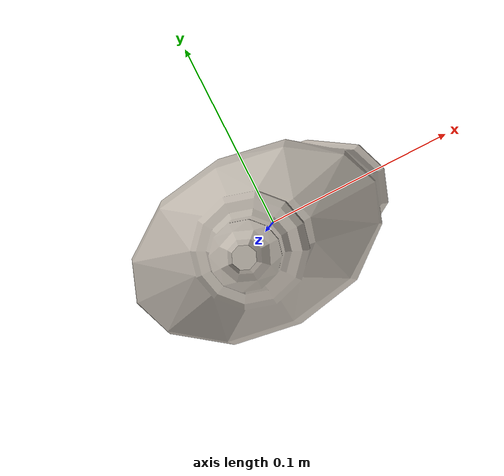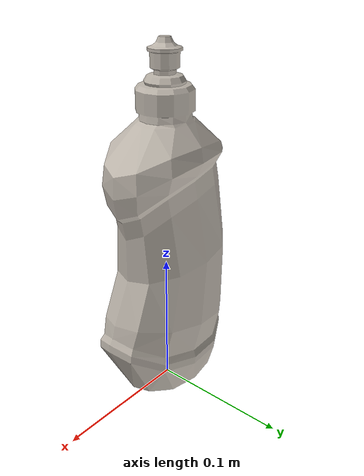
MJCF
<?xml version="1.0" encoding="utf-8"?>
<mujoco model="detergent">
  <compiler angle="radian" meshdir="assets" texturedir="assets" autolimits="true"/>
  <asset>
    <mesh file="detergent.obj"/>
    <mesh file="detergent_collision_001.obj"/>
    <mesh file="detergent_collision_002.obj"/>
    <texture type="2d" name="detergent" file="detergent_basecolor.png"/>
    <material name="detergent" specular="0.2" shininess="0.2" texture="detergent"/>
  </asset>
  <default>
    <default class="detergent">
      <default class="visual">
        <geom type="mesh" mass="0.5" contype="0" conaffinity="0" group="2"/>
      </default>
      <default class="collision">
        <geom type="mesh" mass="0" group="3" solimp="0.998 0.998 0.001" solref="0.004 1"/>
      </default>
      <default class="balance">
        <geom group="3" type="sphere" mass="0.1" size="0.01" pos="0 0 -0.02" contype="0" conaffinity="0"/>
      </default>
    </default>
  </default>
  <worldbody>
    <body name="detergent" childclass="detergent">
      <geom name="mesh" mesh="detergent" class="visual" material="detergent" euler="1.5708 0 0"/>
      <geom name="collider_1" mesh="detergent_collision_001" class="collision" euler="1.5708 0 0"/>
      <geom name="collider_2" mesh="detergent_collision_002" class="collision" euler="1.5708 0 0"/>
      <geom class="balance"/>
    </body>
  </worldbody>
</mujoco>
